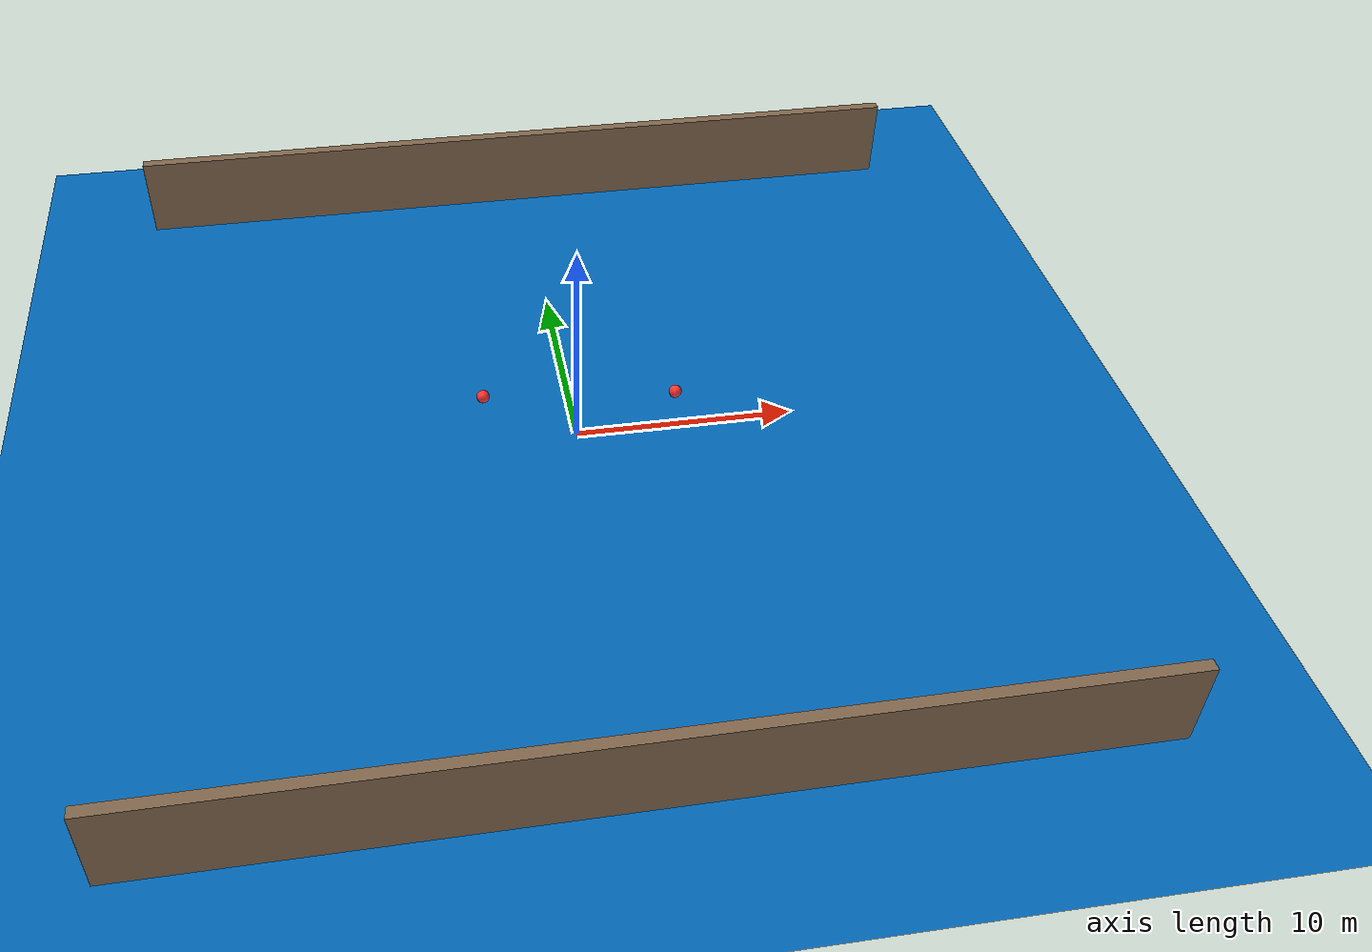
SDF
<?xml version="1.0"?>
<sdf version="1.7">
  <world name="water_surface">

    <!-- Global lighting -->
    <scene>
      <ambient>0.6 0.7 0.8 1.0</ambient>
      <background>0.3 0.5 0.7 1.0</background>
      <shadows>true</shadows>
    </scene>

    <light name="sun" type="directional">
      <pose>0 0 50 0 0 0</pose>
      <diffuse>1 1 0.9 1</diffuse>
      <specular>0.3 0.3 0.3 1</specular>
      <attenuation>
        <range>100</range>
        <constant>0.9</constant>
        <linear>0.01</linear>
        <quadratic>0.0</quadratic>
      </attenuation>
    </light>

    <!-- Physics -->
    <physics name="default_physics" type="ode">
      <max_step_size>0.001</max_step_size>
      <real_time_factor>1.0</real_time_factor>
      <real_time_update_rate>1000</real_time_update_rate>
      <ode>
        <solver>
          <type>quick</type>
          <iters>50</iters>
        </solver>
      </ode>
    </physics>

    <!-- Ground plane (water surface reference) -->
    <include>
      <uri>model://sun</uri>
    </include>

    <!-- Water surface plane -->
    <model name="water_plane">
      <static>true</static>
      <link name="surface">
        <collision name="surface_collision">
          <geometry>
            <plane>
              <normal>0 0 1</normal>
              <size>100 100</size>
            </plane>
          </geometry>
        </collision>
        <visual name="surface_visual">
          <geometry>
            <plane>
              <normal>0 0 1</normal>
              <size>100 100</size>
            </plane>
          </geometry>
          <material>
            <ambient>0.0 0.3 0.6 0.6</ambient>
            <diffuse>0.0 0.4 0.7 0.7</diffuse>
            <specular>0.5 0.5 0.7 1.0</specular>
            <emissive>0.0 0.1 0.2 0.3</emissive>
          </material>
        </visual>
      </link>
    </model>

    <!-- Shore / boundary walls -->
    <model name="shore_boundary">
      <static>true</static>
      <link name="wall_north">
        <pose>0 20 2 0 0 0</pose>
        <collision name="wall_n_collision">
          <geometry>
            <box>
              <size>40 0.5 4</size>
            </box>
          </geometry>
        </collision>
        <visual name="wall_n_visual">
          <geometry>
            <box>
              <size>40 0.5 4</size>
            </box>
          </geometry>
          <material>
            <ambient>0.4 0.3 0.2 1</ambient>
            <diffuse>0.5 0.4 0.3 1</diffuse>
          </material>
        </visual>
      </link>
      <link name="wall_south">
        <pose>0 -20 2 0 0 0</pose>
        <collision name="wall_s_collision">
          <geometry>
            <box>
              <size>40 0.5 4</size>
            </box>
          </geometry>
        </collision>
        <visual name="wall_s_visual">
          <geometry>
            <box>
              <size>40 0.5 4</size>
            </box>
          </geometry>
          <material>
            <ambient>0.4 0.3 0.2 1</ambient>
            <diffuse>0.5 0.4 0.3 1</diffuse>
          </material>
        </visual>
      </link>
    </model>

    <!-- Floating obstacle buoys -->
    <model name="buoy_0">
      <pose>5 2 0.2 0 0 0</pose>
      <static>true</static>
      <link name="buoy_0_link">
        <collision name="buoy_0_collision">
          <geometry>
            <sphere>
              <radius>0.3</radius>
            </sphere>
          </geometry>
        </collision>
        <visual name="buoy_0_visual">
          <geometry>
            <sphere>
              <radius>0.3</radius>
            </sphere>
          </geometry>
          <material>
            <ambient>0.9 0.1 0.1 1</ambient>
            <diffuse>1.0 0.2 0.2 1</diffuse>
          </material>
        </visual>
      </link>
    </model>

    <model name="buoy_1">
      <pose>-4 3 0.2 0 0 0</pose>
      <static>true</static>
      <link name="buoy_1_link">
        <collision name="buoy_1_collision">
          <geometry>
            <sphere>
              <radius>0.3</radius>
            </sphere>
          </geometry>
        </collision>
        <visual name="buoy_1_visual">
          <geometry>
            <sphere>
              <radius>0.3</radius>
            </sphere>
          </geometry>
          <material>
            <ambient>0.9 0.1 0.1 1</ambient>
            <diffuse>1.0 0.2 0.2 1</diffuse>
          </material>
        </visual>
      </link>
    </model>

  </world>
</sdf>
